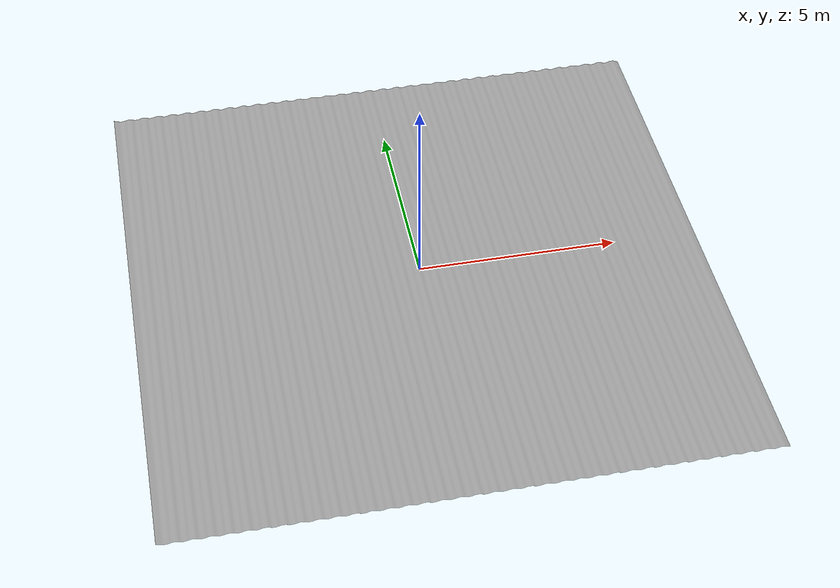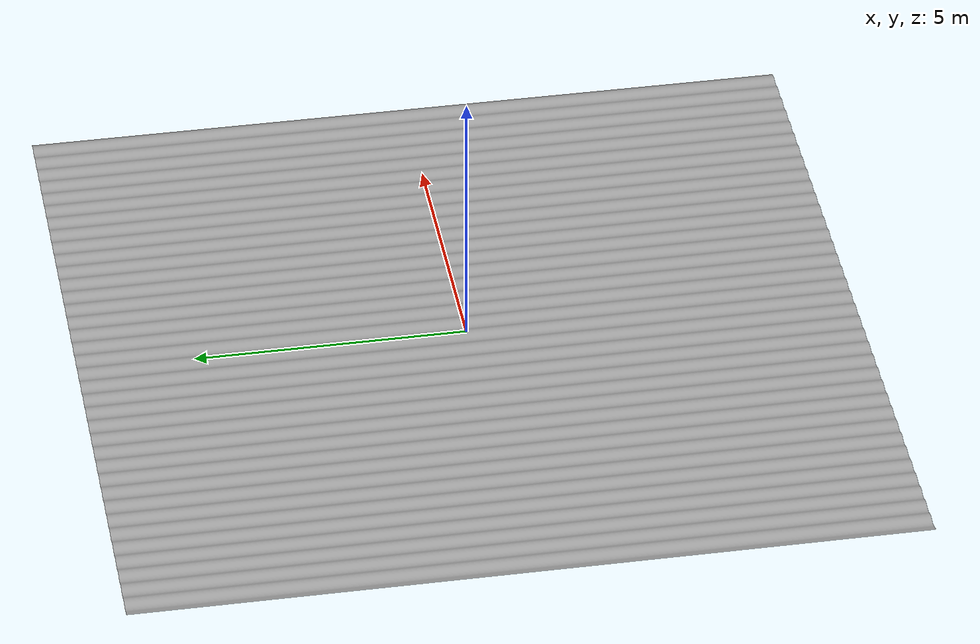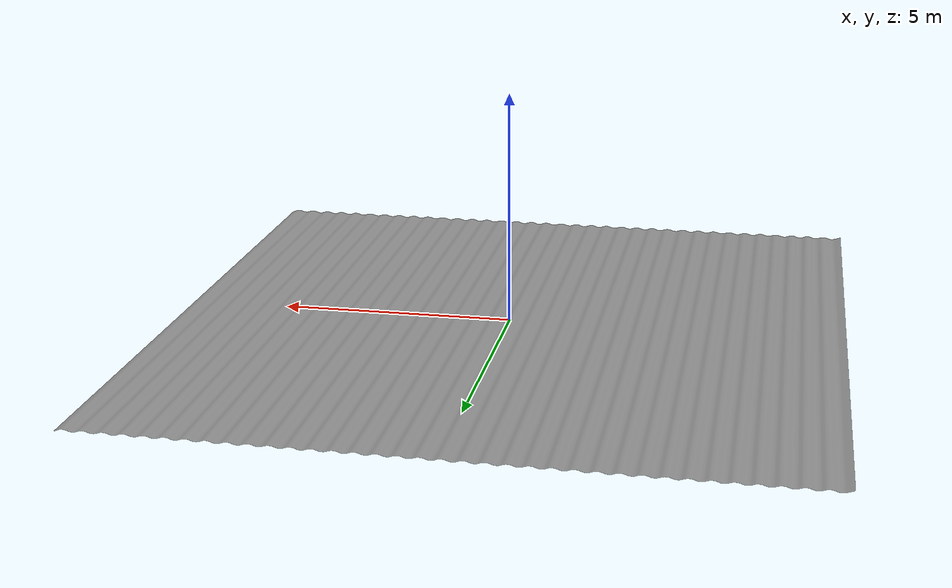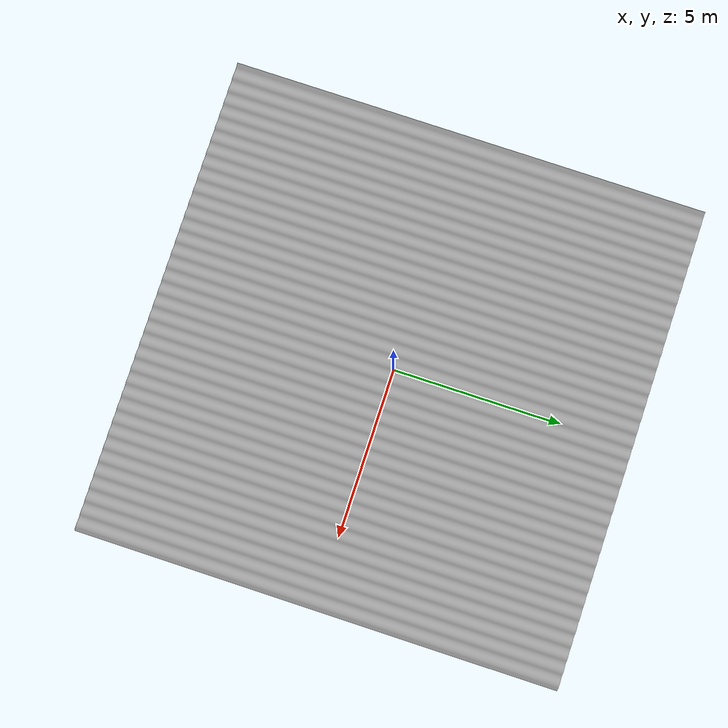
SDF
<?xml version="1.0"?>
<sdf version='1.6'>
  <world name='default'>
    <include>
      <uri>model://sun</uri>
    </include>

    <model name="huppel">
      <pose>0 0 0 0 0 1.57</pose>
      <static>true</static>
      <link name="body">
        <!-- Scaling the collision element -->
        <collision name="collision">
          <geometry>
            <mesh>
              <uri>model://huppel/media/huppel.dae</uri>
              <scale>1.3 1.3 1</scale>  <!-- Scale factor for collision geometry -->
            </mesh>
          </geometry>
          <surface>
            <friction>
              <ode>
                <mu>1.0</mu>           <!-- Lateral friction coefficient -->
                <mu2>1.0</mu2>         <!-- Secondary lateral friction coefficient -->
              </ode>
            </friction>
            <contact>
              <ode>
                <soft_cfm>0.0</soft_cfm>   <!-- Constraint force mixing (0 is rigid) -->
                <soft_erp>0.2</soft_erp>   <!-- Error reduction parameter -->
                <kp>1e5</kp>               <!-- Spring constant -->
                <kd>1e3</kd>               <!-- Damping constant -->
              </ode>
            </contact>
          </surface>
        </collision>

        <!-- Scaling the visual element -->
        <visual name="visual">
          <cast_shadows>false</cast_shadows>
          <geometry>
            <mesh>
              <uri>model://huppel/media/huppel.dae</uri>
              <scale>1.3 1.3 1</scale>  <!-- Scale factor for visual geometry -->
            </mesh>
          </geometry>
          <material>
            <script>
              <name>Gazebo/Grey</name>
            </script>
          </material>
        </visual>
      </link>
    </model>

    <gui fullscreen='0'>
      <camera name='user_camera'>
        <pose frame=''>9.0 -12.0 6.0 0.0 0.3 2.2</pose>
        <view_controller>orbit</view_controller>
        <projection_type>perspective</projection_type>
      </camera>
    </gui>

    <physics name="default_physics" type="ode">
      <max_step_size>0.01</max_step_size> <!-- Smaller step size for better stability -->
      <real_time_update_rate>100</real_time_update_rate>
    </physics>

  </world>
</sdf>
